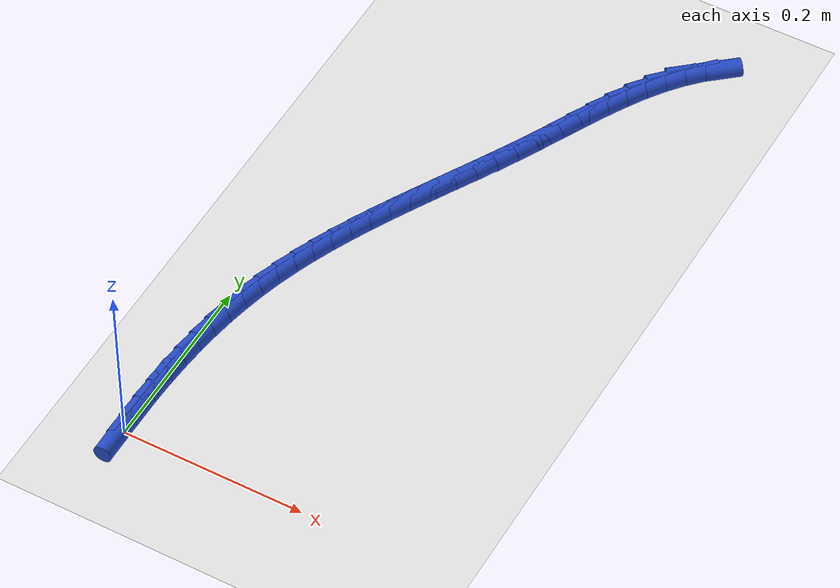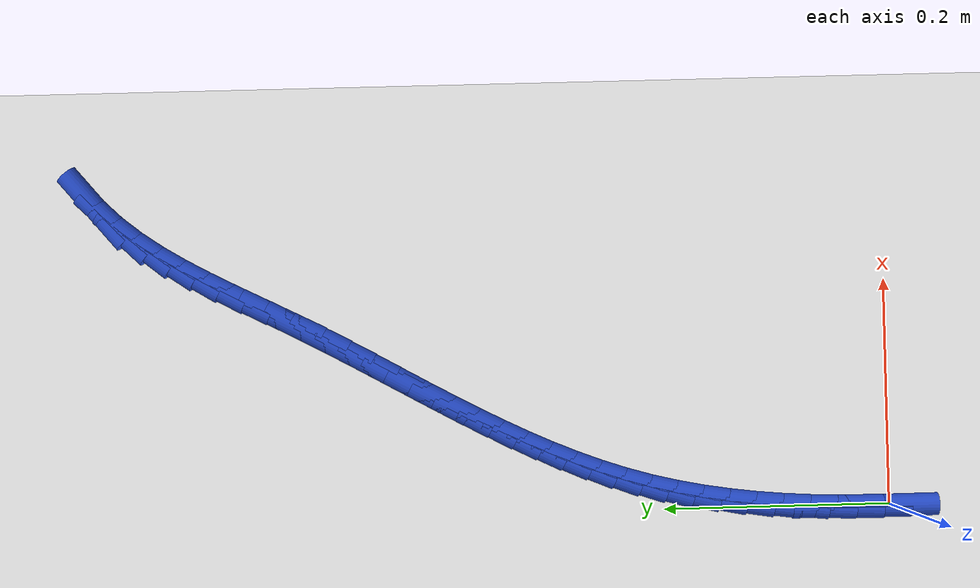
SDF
<sdf version="1.6">
 <world name="default">
  <model name="ground_plane">
   <static>1</static>
   <link name="link">
    <collision name="collision">
     <geometry><plane><normal>0 0 1</normal><size>100 100</size></plane></geometry>
     <surface><friction><ode><mu>100</mu><mu2>50</mu2></ode></friction></surface>
    </collision>
    <visual name="visual">
     <cast_shadows>0</cast_shadows>
     <geometry><plane><normal>0 0 1</normal><size>100 100</size></plane></geometry>
     <material>
      <script><uri>file://media/materials/scripts/gazebo.material</uri><name>Gazebo/WhiteGlow</name></script>
     </material>
    </visual>
   </link>
  </model>
  <model name="line">
   <link name="link_1">
    <pose>-0.00013462288452384928 0.02399724285781386 0.01 0 1.57 1.5543024262705498</pose>
    <collision name="collision">
     <geometry><cylinder><radius>0.01</radius><length>0.08</length></cylinder></geometry>
    </collision>
    <visual name="visual">
     <material>
      <script><name>Gazebo/Blue</name><uri>file://media/materials/scripts/gazebo.material</uri></script>
     </material>
     <geometry><cylinder><radius>0.01</radius><length>0.08</length></cylinder></geometry>
    </visual>
   </link>
   <link name="link_2">
    <pose>0.00026183805540674074 0.04803188441869782 0.01 0 1.57 1.5299692511264111</pose>
    <collision name="collision">
     <geometry><cylinder><radius>0.01</radius><length>0.08</length></cylinder></geometry>
    </collision>
    <visual name="visual">
     <material>
      <script><name>Gazebo/Blue</name><uri>file://media/materials/scripts/gazebo.material</uri></script>
     </material>
     <geometry><cylinder><radius>0.01</radius><length>0.08</length></cylinder></geometry>
    </visual>
   </link>
   <link name="link_3">
    <pose>0.0012430683730944615 0.07205234273181756 0.01 0 1.57 1.5032845562194308</pose>
    <collision name="collision">
     <geometry><cylinder><radius>0.01</radius><length>0.08</length></cylinder></geometry>
    </collision>
    <visual name="visual">
     <material>
      <script><name>Gazebo/Blue</name><uri>file://media/materials/scripts/gazebo.material</uri></script>
     </material>
     <geometry><cylinder><radius>0.01</radius><length>0.08</length></cylinder></geometry>
    </visual>
   </link>
   <link name="link_4">
    <pose>0.002862753621842018 0.0960070358463388 0.01 0 1.57 1.4741153371900613</pose>
    <collision name="collision">
     <geometry><cylinder><radius>0.01</radius><length>0.08</length></cylinder></geometry>
    </collision>
    <visual name="visual">
     <material>
      <script><name>Gazebo/Blue</name><uri>file://media/materials/scripts/gazebo.material</uri></script>
     </material>
     <geometry><cylinder><radius>0.01</radius><length>0.08</length></cylinder></geometry>
    </visual>
   </link>
   <link name="link_5">
    <pose>0.005174579354952117 0.11984438181142718 0.01 0 1.57 1.442320894268272</pose>
    <collision name="collision">
     <geometry><cylinder><radius>0.01</radius><length>0.08</length></cylinder></geometry>
    </collision>
    <visual name="visual">
     <material>
      <script><name>Gazebo/Blue</name><uri>file://media/materials/scripts/gazebo.material</uri></script>
     </material>
     <geometry><cylinder><radius>0.01</radius><length>0.08</length></cylinder></geometry>
    </visual>
   </link>
   <link name="link_6">
    <pose>0.008232231125727466 0.14351279867624842 0.01 0 1.57 1.4077572072235502</pose>
    <collision name="collision">
     <geometry><cylinder><radius>0.01</radius><length>0.08</length></cylinder></geometry>
    </collision>
    <visual name="visual">
     <material>
      <script><name>Gazebo/Blue</name><uri>file://media/materials/scripts/gazebo.material</uri></script>
     </material>
     <geometry><cylinder><radius>0.01</radius><length>0.08</length></cylinder></geometry>
    </visual>
   </link>
   <link name="link_7">
    <pose>0.012089394487470767 0.16696070448996814 0.01 0 1.57 1.3702828442809503</pose>
    <collision name="collision">
     <geometry><cylinder><radius>0.01</radius><length>0.08</length></cylinder></geometry>
    </collision>
    <visual name="visual">
     <material>
      <script><name>Gazebo/Blue</name><uri>file://media/materials/scripts/gazebo.material</uri></script>
     </material>
     <geometry><cylinder><radius>0.01</radius><length>0.08</length></cylinder></geometry>
    </visual>
   </link>
   <link name="link_8">
    <pose>0.01679975499348474 0.19013651730175218 0.01 0 1.57 1.3297667480762738</pose>
    <collision name="collision">
     <geometry><cylinder><radius>0.01</radius><length>0.08</length></cylinder></geometry>
    </collision>
    <visual name="visual">
     <material>
      <script><name>Gazebo/Blue</name><uri>file://media/materials/scripts/gazebo.material</uri></script>
     </material>
     <geometry><cylinder><radius>0.01</radius><length>0.08</length></cylinder></geometry>
    </visual>
   </link>
   <link name="link_9">
    <pose>0.022416998197072074 0.21298865516076604 0.01 0 1.57 1.2863288038921876</pose>
    <collision name="collision">
     <geometry><cylinder><radius>0.01</radius><length>0.08</length></cylinder></geometry>
    </collision>
    <visual name="visual">
     <material>
      <script><name>Gazebo/Blue</name><uri>file://media/materials/scripts/gazebo.material</uri></script>
     </material>
     <geometry><cylinder><radius>0.01</radius><length>0.08</length></cylinder></geometry>
    </visual>
   </link>
   <link name="link_10">
    <pose>0.028990135709450904 0.23546879697553513 0.01 0 1.57 1.243739238663926</pose>
    <collision name="collision">
     <geometry><cylinder><radius>0.01</radius><length>0.08</length></cylinder></geometry>
    </collision>
    <visual name="visual">
     <material>
      <script><name>Gazebo/Blue</name><uri>file://media/materials/scripts/gazebo.material</uri></script>
     </material>
     <geometry><cylinder><radius>0.01</radius><length>0.08</length></cylinder></geometry>
    </visual>
   </link>
   <link name="link_11">
    <pose>0.036491789879545204 0.25758191599080416 0.01 0 1.57 1.205302640160959</pose>
    <collision name="collision">
     <geometry><cylinder><radius>0.01</radius><length>0.08</length></cylinder></geometry>
    </collision>
    <visual name="visual">
     <material>
      <script><name>Gazebo/Blue</name><uri>file://media/materials/scripts/gazebo.material</uri></script>
     </material>
     <geometry><cylinder><radius>0.01</radius><length>0.08</length></cylinder></geometry>
    </visual>
   </link>
   <link name="link_12">
    <pose>0.04483229266909103 0.2793764434549473 0.01 0 1.57 1.17130982850341</pose>
    <collision name="collision">
     <geometry><cylinder><radius>0.01</radius><length>0.08</length></cylinder></geometry>
    </collision>
    <visual name="visual">
     <material>
      <script><name>Gazebo/Blue</name><uri>file://media/materials/scripts/gazebo.material</uri></script>
     </material>
     <geometry><cylinder><radius>0.01</radius><length>0.08</length></cylinder></geometry>
    </visual>
   </link>
   <link name="link_13">
    <pose>0.05392015872231206 0.30090207850043144 0.01 0 1.57 1.1418763662415876</pose>
    <collision name="collision">
     <geometry><cylinder><radius>0.01</radius><length>0.08</length></cylinder></geometry>
    </collision>
    <visual name="visual">
     <material>
      <script><name>Gazebo/Blue</name><uri>file://media/materials/scripts/gazebo.material</uri></script>
     </material>
     <geometry><cylinder><radius>0.01</radius><length>0.08</length></cylinder></geometry>
    </visual>
   </link>
   <link name="link_14">
    <pose>0.06366390268343185 0.3222085202597234 0.01 0 1.57 1.1170505330191731</pose>
    <collision name="collision">
     <geometry><cylinder><radius>0.01</radius><length>0.08</length></cylinder></geometry>
    </collision>
    <visual name="visual">
     <material>
      <script><name>Gazebo/Blue</name><uri>file://media/materials/scripts/gazebo.material</uri></script>
     </material>
     <geometry><cylinder><radius>0.01</radius><length>0.08</length></cylinder></geometry>
    </visual>
   </link>
   <link name="link_15">
    <pose>0.07397203919667412 0.3433454678652904 0.01 0 1.57 1.0968313477389688</pose>
    <collision name="collision">
     <geometry><cylinder><radius>0.01</radius><length>0.08</length></cylinder></geometry>
    </collision>
    <visual name="visual">
     <material>
      <script><name>Gazebo/Blue</name><uri>file://media/materials/scripts/gazebo.material</uri></script>
     </material>
     <geometry><cylinder><radius>0.01</radius><length>0.08</length></cylinder></geometry>
    </visual>
   </link>
   <link name="link_16">
    <pose>0.08475308290626252 0.3643626204495994 0.01 0 1.57 1.0811846470821673</pose>
    <collision name="collision">
     <geometry><cylinder><radius>0.01</radius><length>0.08</length></cylinder></geometry>
    </collision>
    <visual name="visual">
     <material>
      <script><name>Gazebo/Blue</name><uri>file://media/materials/scripts/gazebo.material</uri></script>
     </material>
     <geometry><cylinder><radius>0.01</radius><length>0.08</length></cylinder></geometry>
    </visual>
   </link>
   <link name="link_17">
    <pose>0.09591554845642061 0.385309677145117 0.01 0 1.57 1.0700563237791811</pose>
    <collision name="collision">
     <geometry><cylinder><radius>0.01</radius><length>0.08</length></cylinder></geometry>
    </collision>
    <visual name="visual">
     <material>
      <script><name>Gazebo/Blue</name><uri>file://media/materials/scripts/gazebo.material</uri></script>
     </material>
     <geometry><cylinder><radius>0.01</radius><length>0.08</length></cylinder></geometry>
    </visual>
   </link>
   <link name="link_18">
    <pose>0.1073679504913721 0.40623633708431056 0.01 0 1.57 1.0633823903744817</pose>
    <collision name="collision">
     <geometry><cylinder><radius>0.01</radius><length>0.08</length></cylinder></geometry>
    </collision>
    <visual name="visual">
     <material>
      <script><name>Gazebo/Blue</name><uri>file://media/materials/scripts/gazebo.material</uri></script>
     </material>
     <geometry><cylinder><radius>0.01</radius><length>0.08</length></cylinder></geometry>
    </visual>
   </link>
   <link name="link_19">
    <pose>0.11901880365534061 0.4271922993996468 0.01 0 1.57 1.06109588749169</pose>
    <collision name="collision">
     <geometry><cylinder><radius>0.01</radius><length>0.08</length></cylinder></geometry>
    </collision>
    <visual name="visual">
     <material>
      <script><name>Gazebo/Blue</name><uri>file://media/materials/scripts/gazebo.material</uri></script>
     </material>
     <geometry><cylinder><radius>0.01</radius><length>0.08</length></cylinder></geometry>
    </visual>
   </link>
   <link name="link_20">
    <pose>0.13077662259254974 0.44822726322359274 0.01 0 1.57 1.0631308369675894</pose>
    <collision name="collision">
     <geometry><cylinder><radius>0.01</radius><length>0.08</length></cylinder></geometry>
    </collision>
    <visual name="visual">
     <material>
      <script><name>Gazebo/Blue</name><uri>file://media/materials/scripts/gazebo.material</uri></script>
     </material>
     <geometry><cylinder><radius>0.01</radius><length>0.08</length></cylinder></geometry>
    </visual>
   </link>
   <link name="link_21">
    <pose>0.1425499219472232 0.46939092768861546 0.01 0 1.57 1.069423504282037</pose>
    <collision name="collision">
     <geometry><cylinder><radius>0.01</radius><length>0.08</length></cylinder></geometry>
    </collision>
    <visual name="visual">
     <material>
      <script><name>Gazebo/Blue</name><uri>file://media/materials/scripts/gazebo.material</uri></script>
     </material>
     <geometry><cylinder><radius>0.01</radius><length>0.08</length></cylinder></geometry>
    </visual>
   </link>
   <link name="link_22">
    <pose>0.15424721636358465 0.4907329919271818 0.01 0 1.57 1.0799112347213335</pose>
    <collision name="collision">
     <geometry><cylinder><radius>0.01</radius><length>0.08</length></cylinder></geometry>
    </collision>
    <visual name="visual">
     <material>
      <script><name>Gazebo/Blue</name><uri>file://media/materials/scripts/gazebo.material</uri></script>
     </material>
     <geometry><cylinder><radius>0.01</radius><length>0.08</length></cylinder></geometry>
    </visual>
   </link>
   <link name="link_23">
    <pose>0.16577702048585757 0.5123031550717586 0.01 0 1.57 1.0944660475812336</pose>
    <collision name="collision">
     <geometry><cylinder><radius>0.01</radius><length>0.08</length></cylinder></geometry>
    </collision>
    <visual name="visual">
     <material>
      <script><name>Gazebo/Blue</name><uri>file://media/materials/scripts/gazebo.material</uri></script>
     </material>
     <geometry><cylinder><radius>0.01</radius><length>0.08</length></cylinder></geometry>
    </visual>
   </link>
   <link name="link_24">
    <pose>0.17704902293189417 0.5341500105680198 0.01 0 1.57 1.107175532152483</pose>
    <collision name="collision">
     <geometry><cylinder><radius>0.01</radius><length>0.08</length></cylinder></geometry>
    </collision>
    <visual name="visual">
     <material>
      <script><name>Gazebo/Blue</name><uri>file://media/materials/scripts/gazebo.material</uri></script>
     </material>
     <geometry><cylinder><radius>0.01</radius><length>0.08</length></cylinder></geometry>
    </visual>
   </link>
   <link name="link_25">
    <pose>0.18808266809680688 0.556218780277762 0.01 0 1.57 1.1076003094177147</pose>
    <collision name="collision">
     <geometry><cylinder><radius>0.01</radius><length>0.08</length></cylinder></geometry>
    </collision>
    <visual name="visual">
     <material>
      <script><name>Gazebo/Blue</name><uri>file://media/materials/scripts/gazebo.material</uri></script>
     </material>
     <geometry><cylinder><radius>0.01</radius><length>0.08</length></cylinder></geometry>
    </visual>
   </link>
   <link name="link_26">
    <pose>0.19909508434511577 0.5782685008292138 0.01 0 1.57 1.0945913663082645</pose>
    <collision name="collision">
     <geometry><cylinder><radius>0.01</radius><length>0.08</length></cylinder></geometry>
    </collision>
    <visual name="visual">
     <material>
      <script><name>Gazebo/Blue</name><uri>file://media/materials/scripts/gazebo.material</uri></script>
     </material>
     <geometry><cylinder><radius>0.01</radius><length>0.08</length></cylinder></geometry>
    </visual>
   </link>
   <link name="link_27">
    <pose>0.21032409189719106 0.6000387205834156 0.01 0 1.57 1.067708249834815</pose>
    <collision name="collision">
     <geometry><cylinder><radius>0.01</radius><length>0.08</length></cylinder></geometry>
    </collision>
    <visual name="visual">
     <material>
      <script><name>Gazebo/Blue</name><uri>file://media/materials/scripts/gazebo.material</uri></script>
     </material>
     <geometry><cylinder><radius>0.01</radius><length>0.08</length></cylinder></geometry>
    </visual>
   </link>
   <link name="link_28">
    <pose>0.22200751097340343 0.6212689879014088 0.01 0 1.57 1.0261502567329615</pose>
    <collision name="collision">
     <geometry><cylinder><radius>0.01</radius><length>0.08</length></cylinder></geometry>
    </collision>
    <visual name="visual">
     <material>
      <script><name>Gazebo/Blue</name><uri>file://media/materials/scripts/gazebo.material</uri></script>
     </material>
     <geometry><cylinder><radius>0.01</radius><length>0.08</length></cylinder></geometry>
    </visual>
   </link>
   <link name="link_29">
    <pose>0.23438316179412327 0.6416988511442344 0.01 0 1.57 0.9688768317061921</pose>
    <collision name="collision">
     <geometry><cylinder><radius>0.01</radius><length>0.08</length></cylinder></geometry>
    </collision>
    <visual name="visual">
     <material>
      <script><name>Gazebo/Blue</name><uri>file://media/materials/scripts/gazebo.material</uri></script>
     </material>
     <geometry><cylinder><radius>0.01</radius><length>0.08</length></cylinder></geometry>
    </visual>
   </link>
   <link name="link_30">
    <pose>0.247688864579721 0.661067858672933 0.01 0 1.57 0.89486001078155</pose>
    <collision name="collision">
     <geometry><cylinder><radius>0.01</radius><length>0.08</length></cylinder></geometry>
    </collision>
    <visual name="visual">
     <material>
      <script><name>Gazebo/Blue</name><uri>file://media/materials/scripts/gazebo.material</uri></script>
     </material>
     <geometry><cylinder><radius>0.01</radius><length>0.08</length></cylinder></geometry>
    </visual>
   </link>
   <link name="link_31">
    <pose>0.26216243955056695 0.6791155588485454 0.01 0 1.57 0.8035340639117122</pose>
    <collision name="collision">
     <geometry><cylinder><radius>0.01</radius><length>0.08</length></cylinder></geometry>
    </collision>
    <visual name="visual">
     <material>
      <script><name>Gazebo/Blue</name><uri>file://media/materials/scripts/gazebo.material</uri></script>
     </material>
     <geometry><cylinder><radius>0.01</radius><length>0.08</length></cylinder></geometry>
    </visual>
   </link>
   <link name="link_32">
    <pose>0.27804170692703173 0.6955815000321126 0.01 0 1.57 0.6976796595252164</pose>
    <collision name="collision">
     <geometry><cylinder><radius>0.01</radius><length>0.08</length></cylinder></geometry>
    </collision>
    <visual name="visual">
     <material>
      <script><name>Gazebo/Blue</name><uri>file://media/materials/scripts/gazebo.material</uri></script>
     </material>
     <geometry><cylinder><radius>0.01</radius><length>0.08</length></cylinder></geometry>
    </visual>
   </link>
   <link name="link_280">
    <pose>-2.0816681711721685e-17 6.938893903907228e-18 0.01 0 1.57 -1.564801996226365</pose>
    <collision name="collision">
     <geometry><cylinder><radius>0.01</radius><length>0.08</length></cylinder></geometry>
    </collision>
    <visual name="visual">
     <material>
      <script><name>Gazebo/Blue</name><uri>file://media/materials/scripts/gazebo.material</uri></script>
     </material>
     <geometry><cylinder><radius>0.01</radius><length>0.08</length></cylinder></geometry>
    </visual>
   </link>
   <link name="link_281">
    <pose>-0.00014390574049483575 0.02400668685827363 0.01 0 1.57 1.557043225574596</pose>
    <collision name="collision">
     <geometry><cylinder><radius>0.01</radius><length>0.08</length></cylinder></geometry>
    </collision>
    <visual name="visual">
     <material>
      <script><name>Gazebo/Blue</name><uri>file://media/materials/scripts/gazebo.material</uri></script>
     </material>
     <geometry><cylinder><radius>0.01</radius><length>0.08</length></cylinder></geometry>
    </visual>
   </link>
   <link name="link_282">
    <pose>0.0001875752076388659 0.04810743642237625 0.01 0 1.57 1.5668972568997914</pose>
    <collision name="collision">
     <geometry><cylinder><radius>0.01</radius><length>0.08</length></cylinder></geometry>
    </collision>
    <visual name="visual">
     <material>
      <script><name>Gazebo/Blue</name><uri>file://media/materials/scripts/gazebo.material</uri></script>
     </material>
     <geometry><cylinder><radius>0.01</radius><length>0.08</length></cylinder></geometry>
    </visual>
   </link>
  </model>
 </world>
</sdf>
